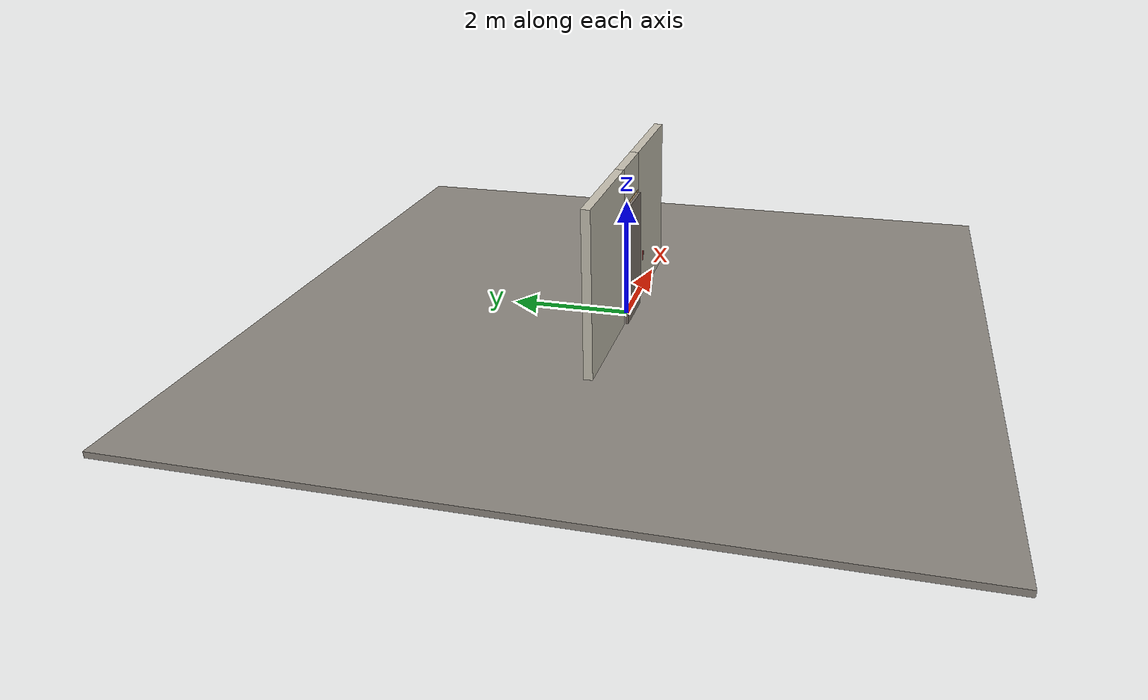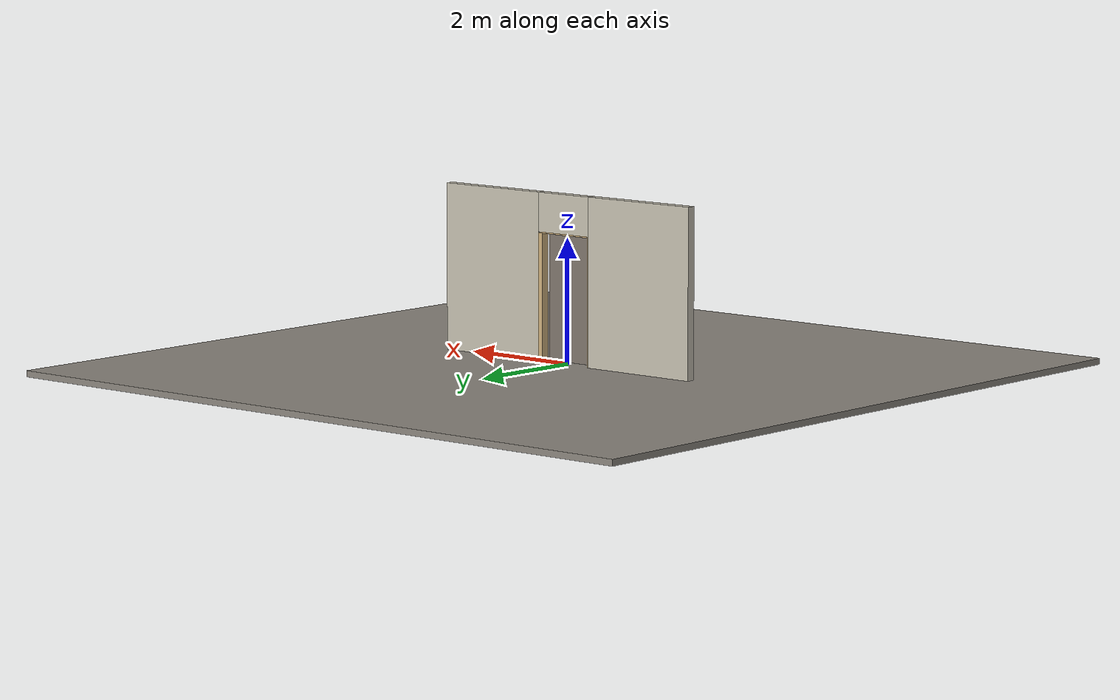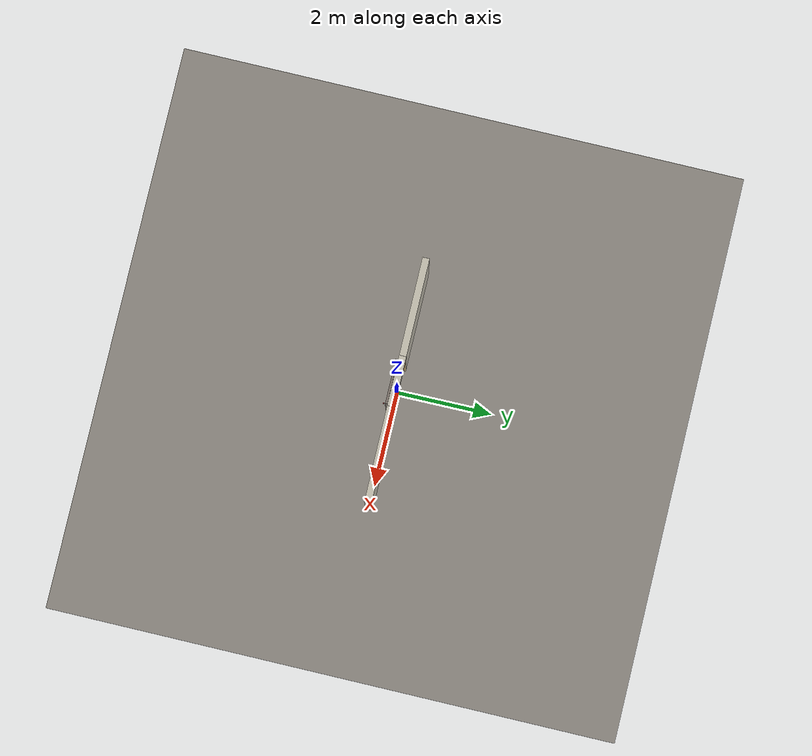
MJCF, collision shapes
<?xml version="1.0" ?>
<mujoco model="db0510_sliding_single_minimal">
  <compiler angle="radian" meshdir="../../hardware" texturedir="../../textures" autolimits="true" inertiafromgeom="false"/>
  <option timestep="0.002" integrator="implicitfast" cone="elliptic" impratio="10" noslip_iterations="3">
    <flag multiccd="enable"/>
  </option>
  <size memory="16M"/>
  <default>
    <geom condim="4" solref="0.005 1" solimp="0.95 0.99 0.001"/>
    <joint solreflimit="0.005 1" solimplimit="0.95 0.99 0.001"/>
    <tendon solreflimit="0.005 1"/>
    <equality solref="0.002 1"/>
  </default>
  <visual>
    <headlight ambient="0.4 0.4 0.4" diffuse="0.7 0.7 0.7" specular="0.2 0.2 0.2"/>
    <quality shadowsize="4096"/>
    <map znear="0.01" zfar="60"/>
  </visual>
  <asset>
    <mesh name="pull_1e5d69a91a" file="pull_1e5d69a91a.obj"/>
    <material name="mat_floor" rgba="0.55 0.53 0.5 1" specular="0.2" shininess="0.15" reflectance="0"/>
    <material name="mat_wall" rgba="0.78 0.76 0.7 1" specular="0.2" shininess="0.1" reflectance="0"/>
    <material name="mat_frame" rgba="0.82 0.7 0.5 1" specular="0.2" shininess="0.45" reflectance="0"/>
    <material name="mat_track" rgba="0.05 0.05 0.05 1" specular="0.38" shininess="0.3" reflectance="0.12"/>
    <material name="mat_leaf" rgba="0.5 0.46 0.425 1" specular="0.2" shininess="0.15" reflectance="0"/>
    <material name="mat_leaf_brace" rgba="0.45 0.414 0.383 1" specular="0.2" shininess="0.2" reflectance="0"/>
    <material name="mat_roller" rgba="0.65 0.66 0.68 1" specular="0.74" shininess="0.5" reflectance="0.36"/>
    <material name="mat_op_stainless" rgba="0.75 0.76 0.77 1" specular="0.8" shininess="0.65" reflectance="0.4"/>
    <material name="mat_hook" rgba="0.75 0.76 0.77 1" specular="0.8" shininess="0.65" reflectance="0.4"/>
    <texture name="skybox" type="skybox" builtin="gradient" rgb1="0.6 0.7 0.85" rgb2="0.9 0.92 0.95" width="256" height="256"/>
  </asset>
  <worldbody>
    <light name="sun" pos="1.5 -2.5 4" dir="-0.3 0.5 -0.8" directional="true" diffuse="0.8 0.8 0.8" specular="0.3 0.3 0.3" castshadow="true"/>
    <light name="fill" pos="-1.5 2.5 3" dir="0.3 -0.5 -0.7" directional="true" diffuse="0.35 0.35 0.4" castshadow="false"/>
    <camera name="robot_view" pos="0 -2.54875 1.73965" xyaxes="1 0 0 0 0.26963 0.962964" fovy="52"/>
    <camera name="far_view" pos="0 2.54875 1.73965" xyaxes="-1 0 0 0 -0.26963 0.962964" fovy="52"/>
    <camera name="iso" pos="1.93705 -2.14095 2.14745" xyaxes="0.741536 0.670913 0 -0.242917 0.268487 0.932151" fovy="46"/>
    <camera name="detail_handle" pos="0.547 -0.9965 1.23" xyaxes="0.97561 0.219512 0 -0.070934 0.315262 0.94635" fovy="38"/>
    <geom name="floor" type="box" size="6 6 0.05" pos="0 0 -0.05" material="mat_floor" group="0" contype="1" conaffinity="1" friction="0.8 0.005 0.0001" density="2400"/>
    <geom name="wall_left" type="box" size="1.007 0.0725 1.35" pos="-1.493 0 1.35" material="mat_wall" group="0" contype="1" conaffinity="1" friction="0.6 0.005 0.0001" density="800"/>
    <geom name="wall_right" type="box" size="0.977 0.0725 1.35" pos="1.523 0 1.35" material="mat_wall" group="0" contype="1" conaffinity="1" friction="0.6 0.005 0.0001" density="800"/>
    <geom name="wall_header" type="box" size="0.516 0.0725 0.3145" pos="0.03 0 2.3855" material="mat_wall" group="0" contype="1" conaffinity="1" friction="0.6 0.005 0.0001" density="800"/>
    <geom name="jamb_l" type="box" size="0.0095 0.0725 1.026" pos="-0.4765 0 1.026" material="mat_frame" group="0" contype="1" conaffinity="1" friction="0.6 0.005 0.0001" density="300"/>
    <geom name="jamb_head" type="box" size="0.486 0.0725 0.0095" pos="0 0 2.0615" material="mat_frame" group="0" contype="1" conaffinity="1" friction="0.6 0.005 0.0001" density="300"/>
    <geom name="jamb_latch_0" type="box" size="0.0395 0.0725 1.026" pos="0.5065 0 1.026" material="mat_frame" group="0" contype="1" conaffinity="1" friction="0.6 0.005 0.0001" density="300"/>
    <site name="approach_point" pos="0 -1.5 0" quat="1 0 0 0" size="0.05" rgba="0.2 0.9 0.2 0.5" group="4"/>
    <site name="goal_point" pos="0 1.5 0" quat="1 0 0 0" size="0.05" rgba="0.2 0.9 0.2 0.5" group="4"/>
    <site name="door_plane_center" pos="0 0 1.026" quat="1 0 0 0" size="0.02" rgba="0.2 0.9 0.2 0.5" group="4"/>
    <body name="leaf" pos="0 -0.1145 0">
      <inertial pos="0.004159 -0.000819 1.027116" mass="39.725078" quat="0.500807 0.498596 -0.50131 0.499282" diaginertia="2.802964174 13.526798837 16.312176307"/>
      <joint name="leaf_slide" type="slide" axis="-1 0 0" limited="true" range="0 0.914" damping="3.986254" frictionloss="27.269895" armature="0.5"/>
      <geom name="leaf_slab" type="box" size="0.457 0.022 1.016" pos="0 0 1.028" material="mat_leaf" group="0" contype="1" conaffinity="1" friction="0.45 0.005 0.0001" density="1"/>
      <geom name="leaf_pull_n" type="mesh" mesh="pull_1e5d69a91a" pos="0.367 -0.022 0.95" quat="0.707107 0.707107 0 0" material="mat_op_stainless" group="1" contype="0" conaffinity="0" density="3000"/>
      <geom name="leaf_pull_col_n" type="capsule" size="0.0095 0.08" pos="0.367 -0.082 0.95" material="mat_op_stainless" group="3" contype="1" conaffinity="1" rgba="0.8 0.3 0.3 0.25" friction="0.7 0.01 0.0001" density="3000"/>
      <site name="leaf_pull_grip_n" pos="0.367 -0.082 0.95" quat="1 0 0 0" size="0.012" rgba="0.2 0.9 0.2 0.5" group="4"/>
      <site name="leaf_edge_mid" pos="0.457 0 1.028" quat="1 0 0 0" size="0.02" rgba="0.2 0.9 0.2 0.5" group="4"/>
    </body>
  </worldbody>
  <sensor>
    <jointpos name="leaf_slide_pos" joint="leaf_slide"/>
    <jointvel name="leaf_slide_vel" joint="leaf_slide"/>
  </sensor>
</mujoco>
